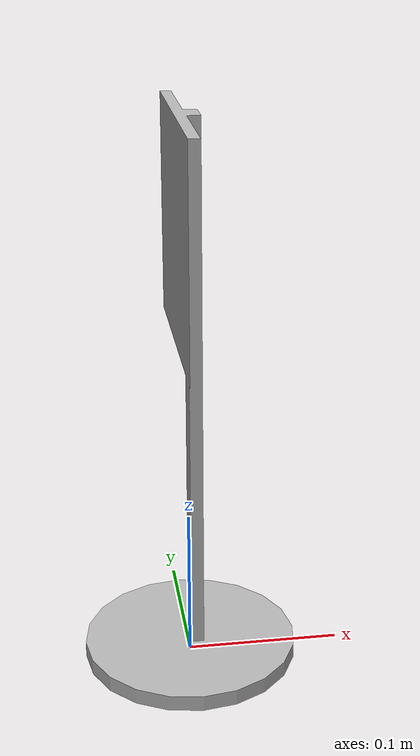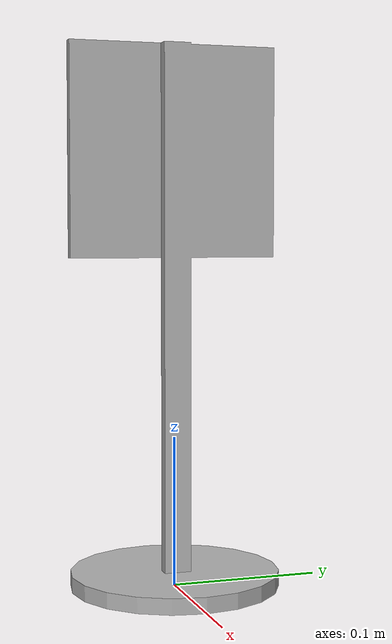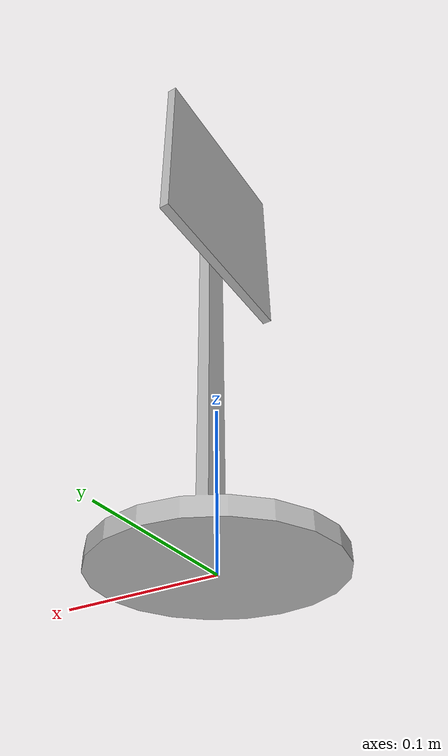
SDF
<?xml version="1.0" ?>
<sdf version="1.8">
  <model name="SignParkingA">
    <static>true</static>
    <link name="SignParkingA">
      <visual name="visual">
        <geometry>
          <mesh>
            <uri>model://YahboomTrack/SignParkingA/meshes/SignParkingA.dae</uri>
            <scale>2.0 2.0 2.0</scale>
          </mesh>
        </geometry>
      </visual>
      <collision name="visual">
        <geometry>
          <mesh>
            <uri>model://YahboomTrack/SignParkingA/meshes/SignParkingA.dae</uri>
            <scale>2.0 2.0 2.0</scale>
          </mesh>
        </geometry>
      </collision>
    </link>
  </model>
</sdf>
